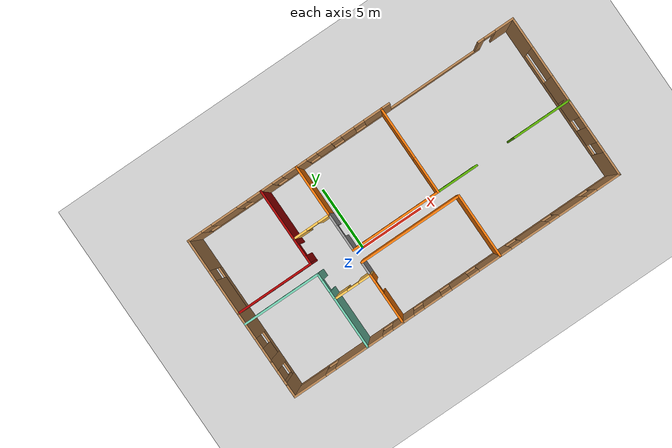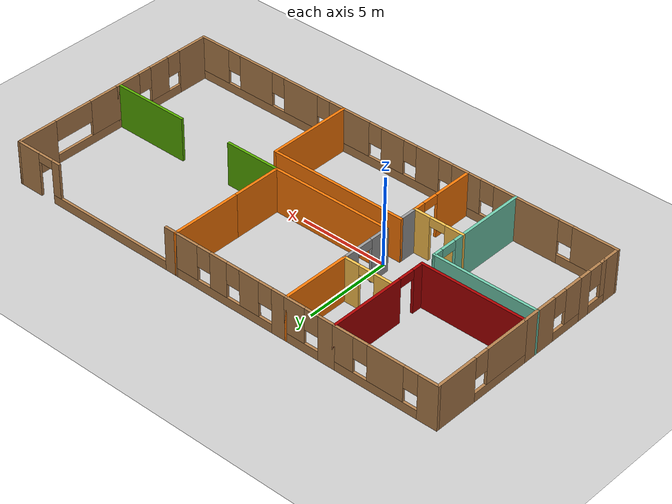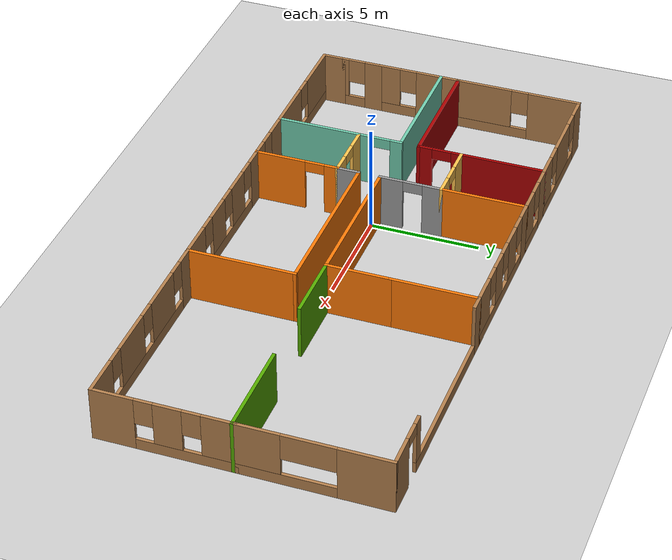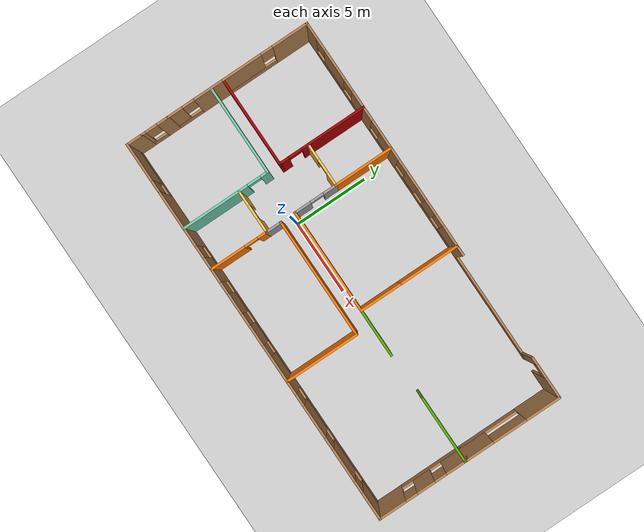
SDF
<sdf version="1.6">
 <world name="default">
  <model name="ground_plane">
   <static>1</static>
   <link name="link">
    <collision name="collision">
     <geometry><plane><normal>0 0 1</normal><size>100 100</size></plane></geometry>
     <surface>
      <contact><collide_bitmask>65535</collide_bitmask></contact>
      <friction><ode><mu>100</mu><mu2>50</mu2></ode></friction>
     </surface>
    </collision>
    <visual name="visual">
     <cast_shadows>0</cast_shadows>
     <geometry><plane><normal>0 0 1</normal><size>100 100</size></plane></geometry>
     <material>
      <script><uri>file://media/materials/scripts/gazebo.material</uri><name>Gazebo/Grey</name></script>
     </material>
    </visual>
   </link>
  </model>
  <model name="home">
   <pose>4.0109 0.7129 0 0 -0 0</pose>
   <link name="Wall_24">
    <pose>-13.075 3.35 0 0 0 -1.5708</pose>
    <visual name="Wall_24_Visual_0">
     <pose>-1.74921 0 1.25 0 -0 0</pose>
     <geometry><box><size>2.50157 0.15 2.5</size></box></geometry>
     <material>
      <script><uri>file://media/materials/scripts/gazebo.material</uri><name>Gazebo/Wood</name></script>
      <ambient>1 1 1 1</ambient>
     </material>
     <meta><layer>0</layer></meta>
    </visual>
    <collision name="Wall_24_Collision_0">
     <geometry><box><size>2.50157 0.15 2.5</size></box></geometry>
     <pose>-1.74921 0 1.25 0 -0 0</pose>
    </collision>
    <visual name="Wall_24_Visual_1">
     <pose>1.25079 0 0.25 0 -0 0</pose>
     <geometry><box><size>3.49843 0.15 0.5</size></box></geometry>
     <material>
      <script><uri>file://media/materials/scripts/gazebo.material</uri><name>Gazebo/Wood</name></script>
      <ambient>1 1 1 1</ambient>
     </material>
     <meta><layer>0</layer></meta>
    </visual>
    <collision name="Wall_24_Collision_1">
     <geometry><box><size>3.49843 0.15 0.5</size></box></geometry>
     <pose>1.25079 0 0.25 0 -0 0</pose>
    </collision>
    <visual name="Wall_24_Visual_2">
     <pose>1.65078 0 1.5 0 -0 0</pose>
     <geometry><box><size>2.69843 0.15 2</size></box></geometry>
     <material>
      <script><uri>file://media/materials/scripts/gazebo.material</uri><name>Gazebo/Wood</name></script>
      <ambient>1 1 1 1</ambient>
     </material>
     <meta><layer>0</layer></meta>
    </visual>
    <collision name="Wall_24_Collision_2">
     <geometry><box><size>2.69843 0.15 2</size></box></geometry>
     <pose>1.65078 0 1.5 0 -0 0</pose>
    </collision>
    <visual name="Wall_24_Visual_3">
     <pose>-0.098431 0 1.9 0 -0 0</pose>
     <geometry><box><size>0.8 0.15 1.2</size></box></geometry>
     <material>
      <script><uri>file://media/materials/scripts/gazebo.material</uri><name>Gazebo/Wood</name></script>
      <ambient>1 1 1 1</ambient>
     </material>
     <meta><layer>0</layer></meta>
    </visual>
    <collision name="Wall_24_Collision_3">
     <geometry><box><size>0.8 0.15 1.2</size></box></geometry>
     <pose>-0.098431 0 1.9 0 -0 0</pose>
    </collision>
   </link>
   <link name="Wall_25">
    <collision name="Wall_25_Collision">
     <geometry><box><size>6 0.15 2.5</size></box></geometry>
     <pose>0 0 1.25 0 -0 0</pose>
    </collision>
    <visual name="Wall_25_Visual">
     <pose>0 0 1.25 0 -0 0</pose>
     <geometry><box><size>6 0.15 2.5</size></box></geometry>
     <material>
      <script><uri>file://media/materials/scripts/gazebo.material</uri><name>Gazebo/Grey</name></script>
      <ambient>0.666667 0 0 1</ambient>
     </material>
     <meta><layer>0</layer></meta>
    </visual>
    <pose>-10.15 0.425 0 0 -0 0</pose>
   </link>
   <link name="Wall_27">
    <pose>-10.15 6.275 0 0 -0 0</pose>
    <visual name="Wall_27_Visual_0">
     <pose>-2.4286 0 1.25 0 -0 0</pose>
     <geometry><box><size>1.1428 0.15 2.5</size></box></geometry>
     <material>
      <script><uri>file://media/materials/scripts/gazebo.material</uri><name>Gazebo/Wood</name></script>
      <ambient>1 1 1 1</ambient>
     </material>
     <meta><layer>0</layer></meta>
    </visual>
    <collision name="Wall_27_Collision_0">
     <geometry><box><size>1.1428 0.15 2.5</size></box></geometry>
     <pose>-2.4286 0 1.25 0 -0 0</pose>
    </collision>
    <visual name="Wall_27_Visual_1">
     <pose>0.571398 0 0.25 0 -0 0</pose>
     <geometry><box><size>4.8572 0.15 0.5</size></box></geometry>
     <material>
      <script><uri>file://media/materials/scripts/gazebo.material</uri><name>Gazebo/Wood</name></script>
      <ambient>1 1 1 1</ambient>
     </material>
     <meta><layer>0</layer></meta>
    </visual>
    <collision name="Wall_27_Collision_1">
     <geometry><box><size>4.8572 0.15 0.5</size></box></geometry>
     <pose>0.571398 0 0.25 0 -0 0</pose>
    </collision>
    <visual name="Wall_27_Visual_2">
     <pose>-0.031204 0 1.5 0 -0 0</pose>
     <geometry><box><size>2.052 0.15 2</size></box></geometry>
     <material>
      <script><uri>file://media/materials/scripts/gazebo.material</uri><name>Gazebo/Wood</name></script>
      <ambient>1 1 1 1</ambient>
     </material>
     <meta><layer>0</layer></meta>
    </visual>
    <collision name="Wall_27_Collision_2">
     <geometry><box><size>2.052 0.15 2</size></box></geometry>
     <pose>-0.031204 0 1.5 0 -0 0</pose>
    </collision>
    <visual name="Wall_27_Visual_3">
     <pose>2.3974 0 1.5 0 -0 0</pose>
     <geometry><box><size>1.2052 0.15 2</size></box></geometry>
     <material>
      <script><uri>file://media/materials/scripts/gazebo.material</uri><name>Gazebo/Wood</name></script>
      <ambient>1 1 1 1</ambient>
     </material>
     <meta><layer>0</layer></meta>
    </visual>
    <collision name="Wall_27_Collision_3">
     <geometry><box><size>1.2052 0.15 2</size></box></geometry>
     <pose>2.3974 0 1.5 0 -0 0</pose>
    </collision>
    <visual name="Wall_27_Visual_4">
     <pose>-1.4572 0 1.9 0 -0 0</pose>
     <geometry><box><size>0.8 0.15 1.2</size></box></geometry>
     <material>
      <script><uri>file://media/materials/scripts/gazebo.material</uri><name>Gazebo/Wood</name></script>
      <ambient>1 1 1 1</ambient>
     </material>
     <meta><layer>0</layer></meta>
    </visual>
    <collision name="Wall_27_Collision_4">
     <geometry><box><size>0.8 0.15 1.2</size></box></geometry>
     <pose>-1.4572 0 1.9 0 -0 0</pose>
    </collision>
    <visual name="Wall_27_Visual_5">
     <pose>1.3948 0 1.9 0 -0 0</pose>
     <geometry><box><size>0.8 0.15 1.2</size></box></geometry>
     <material>
      <script><uri>file://media/materials/scripts/gazebo.material</uri><name>Gazebo/Wood</name></script>
      <ambient>1 1 1 1</ambient>
     </material>
     <meta><layer>0</layer></meta>
    </visual>
    <collision name="Wall_27_Collision_5">
     <geometry><box><size>0.8 0.15 1.2</size></box></geometry>
     <pose>1.3948 0 1.9 0 -0 0</pose>
    </collision>
   </link>
   <link name="Wall_28">
    <pose>-7.225 3.35 0 0 0 -1.5708</pose>
    <visual name="Wall_28_Visual_0">
     <pose>-0.808215 0 1.25 0 -0 0</pose>
     <geometry><box><size>4.38357 0.15 2.5</size></box></geometry>
     <material>
      <script><uri>file://media/materials/scripts/gazebo.material</uri><name>Gazebo/Grey</name></script>
      <ambient>0.666667 0 0 1</ambient>
     </material>
     <meta><layer>0</layer></meta>
    </visual>
    <collision name="Wall_28_Collision_0">
     <geometry><box><size>4.38357 0.15 2.5</size></box></geometry>
     <pose>-0.808215 0 1.25 0 -0 0</pose>
    </collision>
    <visual name="Wall_28_Visual_1">
     <pose>2.64179 0 1.25 0 -0 0</pose>
     <geometry><box><size>0.716431 0.15 2.5</size></box></geometry>
     <material>
      <script><uri>file://media/materials/scripts/gazebo.material</uri><name>Gazebo/Grey</name></script>
      <ambient>0.666667 0 0 1</ambient>
     </material>
     <meta><layer>0</layer></meta>
    </visual>
    <collision name="Wall_28_Collision_1">
     <geometry><box><size>0.716431 0.15 2.5</size></box></geometry>
     <pose>2.64179 0 1.25 0 -0 0</pose>
    </collision>
    <visual name="Wall_28_Visual_2">
     <pose>1.83357 0 2.25 0 -0 0</pose>
     <geometry><box><size>0.9 0.15 0.5</size></box></geometry>
     <material>
      <script><uri>file://media/materials/scripts/gazebo.material</uri><name>Gazebo/Grey</name></script>
      <ambient>0.666667 0 0 1</ambient>
     </material>
     <meta><layer>0</layer></meta>
    </visual>
    <collision name="Wall_28_Collision_2">
     <geometry><box><size>0.9 0.15 0.5</size></box></geometry>
     <pose>1.83357 0 2.25 0 -0 0</pose>
    </collision>
   </link>
   <link name="Wall_32">
    <pose>-13.075 -1.5 0 0 0 -1.5708</pose>
    <visual name="Wall_32_Visual_0">
     <pose>-0.937215 0 1.25 0 -0 0</pose>
     <geometry><box><size>2.12557 0.15 2.5</size></box></geometry>
     <material>
      <script><uri>file://media/materials/scripts/gazebo.material</uri><name>Gazebo/Wood</name></script>
      <ambient>1 1 1 1</ambient>
     </material>
     <meta><layer>0</layer></meta>
    </visual>
    <collision name="Wall_32_Collision_0">
     <geometry><box><size>2.12557 0.15 2.5</size></box></geometry>
     <pose>-0.937215 0 1.25 0 -0 0</pose>
    </collision>
    <visual name="Wall_32_Visual_1">
     <pose>1.06279 0 0.25 0 -0 0</pose>
     <geometry><box><size>1.87443 0.15 0.5</size></box></geometry>
     <material>
      <script><uri>file://media/materials/scripts/gazebo.material</uri><name>Gazebo/Wood</name></script>
      <ambient>1 1 1 1</ambient>
     </material>
     <meta><layer>0</layer></meta>
    </visual>
    <collision name="Wall_32_Collision_1">
     <geometry><box><size>1.87443 0.15 0.5</size></box></geometry>
     <pose>1.06279 0 0.25 0 -0 0</pose>
    </collision>
    <visual name="Wall_32_Visual_2">
     <pose>1.46279 0 1.5 0 -0 0</pose>
     <geometry><box><size>1.07443 0.15 2</size></box></geometry>
     <material>
      <script><uri>file://media/materials/scripts/gazebo.material</uri><name>Gazebo/Wood</name></script>
      <ambient>1 1 1 1</ambient>
     </material>
     <meta><layer>0</layer></meta>
    </visual>
    <collision name="Wall_32_Collision_2">
     <geometry><box><size>1.07443 0.15 2</size></box></geometry>
     <pose>1.46279 0 1.5 0 -0 0</pose>
    </collision>
    <visual name="Wall_32_Visual_3">
     <pose>0.525569 0 1.9 0 -0 0</pose>
     <geometry><box><size>0.8 0.15 1.2</size></box></geometry>
     <material>
      <script><uri>file://media/materials/scripts/gazebo.material</uri><name>Gazebo/Wood</name></script>
      <ambient>1 1 1 1</ambient>
     </material>
     <meta><layer>0</layer></meta>
    </visual>
    <collision name="Wall_32_Collision_3">
     <geometry><box><size>0.8 0.15 1.2</size></box></geometry>
     <pose>0.525569 0 1.9 0 -0 0</pose>
    </collision>
   </link>
   <link name="Wall_34">
    <pose>-13.075 -4.35 0 0 0 -1.5708</pose>
    <visual name="Wall_34_Visual_0">
     <pose>-0.574215 0 1.25 0 -0 0</pose>
     <geometry><box><size>0.85157 0.15 2.5</size></box></geometry>
     <material>
      <script><uri>file://media/materials/scripts/gazebo.material</uri><name>Gazebo/Wood</name></script>
      <ambient>1 1 1 1</ambient>
     </material>
     <meta><layer>0</layer></meta>
    </visual>
    <collision name="Wall_34_Collision_0">
     <geometry><box><size>0.85157 0.15 2.5</size></box></geometry>
     <pose>-0.574215 0 1.25 0 -0 0</pose>
    </collision>
    <visual name="Wall_34_Visual_1">
     <pose>0.425785 0 0.25 0 -0 0</pose>
     <geometry><box><size>1.14843 0.15 0.5</size></box></geometry>
     <material>
      <script><uri>file://media/materials/scripts/gazebo.material</uri><name>Gazebo/Wood</name></script>
      <ambient>1 1 1 1</ambient>
     </material>
     <meta><layer>0</layer></meta>
    </visual>
    <collision name="Wall_34_Collision_1">
     <geometry><box><size>1.14843 0.15 0.5</size></box></geometry>
     <pose>0.425785 0 0.25 0 -0 0</pose>
    </collision>
    <visual name="Wall_34_Visual_2">
     <pose>0.825785 0 1.5 0 -0 0</pose>
     <geometry><box><size>0.34843 0.15 2</size></box></geometry>
     <material>
      <script><uri>file://media/materials/scripts/gazebo.material</uri><name>Gazebo/Wood</name></script>
      <ambient>1 1 1 1</ambient>
     </material>
     <meta><layer>0</layer></meta>
    </visual>
    <collision name="Wall_34_Collision_2">
     <geometry><box><size>0.34843 0.15 2</size></box></geometry>
     <pose>0.825785 0 1.5 0 -0 0</pose>
    </collision>
    <visual name="Wall_34_Visual_3">
     <pose>0.25157 0 1.9 0 -0 0</pose>
     <geometry><box><size>0.8 0.15 1.2</size></box></geometry>
     <material>
      <script><uri>file://media/materials/scripts/gazebo.material</uri><name>Gazebo/Wood</name></script>
      <ambient>1 1 1 1</ambient>
     </material>
     <meta><layer>0</layer></meta>
    </visual>
    <collision name="Wall_34_Collision_3">
     <geometry><box><size>0.8 0.15 1.2</size></box></geometry>
     <pose>0.25157 0 1.9 0 -0 0</pose>
    </collision>
   </link>
   <link name="Wall_36">
    <collision name="Wall_36_Collision">
     <geometry><box><size>1 0.15 2.5</size></box></geometry>
     <pose>0 0 1.25 0 -0 0</pose>
    </collision>
    <visual name="Wall_36_Visual">
     <pose>0 0 1.25 0 -0 0</pose>
     <geometry><box><size>1 0.15 2.5</size></box></geometry>
     <material>
      <script><uri>file://media/materials/scripts/gazebo.material</uri><name>Gazebo/Wood</name></script>
      <ambient>1 1 1 1</ambient>
     </material>
     <meta><layer>0</layer></meta>
    </visual>
    <pose>-13.075 -5.7 0 0 0 -1.5708</pose>
   </link>
   <link name="Wall_39">
    <collision name="Wall_39_Collision">
     <geometry><box><size>6 0.15 2.5</size></box></geometry>
     <pose>0 0 1.25 0 -0 0</pose>
    </collision>
    <visual name="Wall_39_Visual">
     <pose>0 0 1.25 0 -0 0</pose>
     <geometry><box><size>6 0.15 2.5</size></box></geometry>
     <material>
      <script><uri>file://media/materials/scripts/gazebo.material</uri><name>Gazebo/Grey</name></script>
      <ambient>0.435294 0.796078 0.67451 1</ambient>
     </material>
     <meta><layer>0</layer></meta>
    </visual>
    <pose>-10.15 -0.425 0 0 -0 3.14159</pose>
   </link>
   <link name="Wall_43">
    <pose>-7.225 -3.35 0 0 0 -1.5708</pose>
    <visual name="Wall_43_Visual_0">
     <pose>-2.70921 0 1.25 0 -0 0</pose>
     <geometry><box><size>0.581569 0.15 2.5</size></box></geometry>
     <material>
      <script><uri>file://media/materials/scripts/gazebo.material</uri><name>Gazebo/Grey</name></script>
      <ambient>0.435294 0.796078 0.67451 1</ambient>
     </material>
     <meta><layer>0</layer></meta>
    </visual>
    <collision name="Wall_43_Collision_0">
     <geometry><box><size>0.581569 0.15 2.5</size></box></geometry>
     <pose>-2.70921 0 1.25 0 -0 0</pose>
    </collision>
    <visual name="Wall_43_Visual_1">
     <pose>0.740785 0 1.25 0 -0 0</pose>
     <geometry><box><size>4.51843 0.15 2.5</size></box></geometry>
     <material>
      <script><uri>file://media/materials/scripts/gazebo.material</uri><name>Gazebo/Grey</name></script>
      <ambient>0.435294 0.796078 0.67451 1</ambient>
     </material>
     <meta><layer>0</layer></meta>
    </visual>
    <collision name="Wall_43_Collision_1">
     <geometry><box><size>4.51843 0.15 2.5</size></box></geometry>
     <pose>0.740785 0 1.25 0 -0 0</pose>
    </collision>
    <visual name="Wall_43_Visual_2">
     <pose>-1.96843 0 2.25 0 -0 0</pose>
     <geometry><box><size>0.9 0.15 0.5</size></box></geometry>
     <material>
      <script><uri>file://media/materials/scripts/gazebo.material</uri><name>Gazebo/Grey</name></script>
      <ambient>0.435294 0.796078 0.67451 1</ambient>
     </material>
     <meta><layer>0</layer></meta>
    </visual>
    <collision name="Wall_43_Collision_2">
     <geometry><box><size>0.9 0.15 0.5</size></box></geometry>
     <pose>-1.96843 0 2.25 0 -0 0</pose>
    </collision>
   </link>
   <link name="Wall_44">
    <pose>-10.15 -6.275 0 0 -0 3.14159</pose>
    <visual name="Wall_44_Visual_0">
     <pose>-1.6844 0 1.25 0 -0 0</pose>
     <geometry><box><size>2.6312 0.15 2.5</size></box></geometry>
     <material>
      <script><uri>file://media/materials/scripts/gazebo.material</uri><name>Gazebo/Wood</name></script>
      <ambient>1 1 1 1</ambient>
     </material>
     <meta><layer>0</layer></meta>
    </visual>
    <collision name="Wall_44_Collision_0">
     <geometry><box><size>2.6312 0.15 2.5</size></box></geometry>
     <pose>-1.6844 0 1.25 0 -0 0</pose>
    </collision>
    <visual name="Wall_44_Visual_1">
     <pose>1.3156 0 0.25 0 -0 0</pose>
     <geometry><box><size>3.3688 0.15 0.5</size></box></geometry>
     <material>
      <script><uri>file://media/materials/scripts/gazebo.material</uri><name>Gazebo/Wood</name></script>
      <ambient>1 1 1 1</ambient>
     </material>
     <meta><layer>0</layer></meta>
    </visual>
    <collision name="Wall_44_Collision_1">
     <geometry><box><size>3.3688 0.15 0.5</size></box></geometry>
     <pose>1.3156 0 0.25 0 -0 0</pose>
    </collision>
    <visual name="Wall_44_Visual_2">
     <pose>1.7156 0 1.5 0 -0 0</pose>
     <geometry><box><size>2.5688 0.15 2</size></box></geometry>
     <material>
      <script><uri>file://media/materials/scripts/gazebo.material</uri><name>Gazebo/Wood</name></script>
      <ambient>1 1 1 1</ambient>
     </material>
     <meta><layer>0</layer></meta>
    </visual>
    <collision name="Wall_44_Collision_2">
     <geometry><box><size>2.5688 0.15 2</size></box></geometry>
     <pose>1.7156 0 1.5 0 -0 0</pose>
    </collision>
    <visual name="Wall_44_Visual_3">
     <pose>0.031204 0 1.9 0 -0 0</pose>
     <geometry><box><size>0.8 0.15 1.2</size></box></geometry>
     <material>
      <script><uri>file://media/materials/scripts/gazebo.material</uri><name>Gazebo/Wood</name></script>
      <ambient>1 1 1 1</ambient>
     </material>
     <meta><layer>0</layer></meta>
    </visual>
    <collision name="Wall_44_Collision_3">
     <geometry><box><size>0.8 0.15 1.2</size></box></geometry>
     <pose>0.031204 0 1.9 0 -0 0</pose>
    </collision>
   </link>
   <link name="Wall_48">
    <pose>-5.8 6.275 0 0 -0 0</pose>
    <visual name="Wall_48_Visual_0">
     <pose>-1.0016 0 1.25 0 -0 0</pose>
     <geometry><box><size>0.996796 0.15 2.5</size></box></geometry>
     <material>
      <script><uri>file://media/materials/scripts/gazebo.material</uri><name>Gazebo/Wood</name></script>
      <ambient>1 1 1 1</ambient>
     </material>
     <meta><layer>0</layer></meta>
    </visual>
    <collision name="Wall_48_Collision_0">
     <geometry><box><size>0.996796 0.15 2.5</size></box></geometry>
     <pose>-1.0016 0 1.25 0 -0 0</pose>
    </collision>
    <visual name="Wall_48_Visual_1">
     <pose>0.498398 0 0.25 0 -0 0</pose>
     <geometry><box><size>2.0032 0.15 0.5</size></box></geometry>
     <material>
      <script><uri>file://media/materials/scripts/gazebo.material</uri><name>Gazebo/Wood</name></script>
      <ambient>1 1 1 1</ambient>
     </material>
     <meta><layer>0</layer></meta>
    </visual>
    <collision name="Wall_48_Collision_1">
     <geometry><box><size>2.0032 0.15 0.5</size></box></geometry>
     <pose>0.498398 0 0.25 0 -0 0</pose>
    </collision>
    <visual name="Wall_48_Visual_2">
     <pose>0.898398 0 1.5 0 -0 0</pose>
     <geometry><box><size>1.2032 0.15 2</size></box></geometry>
     <material>
      <script><uri>file://media/materials/scripts/gazebo.material</uri><name>Gazebo/Wood</name></script>
      <ambient>1 1 1 1</ambient>
     </material>
     <meta><layer>0</layer></meta>
    </visual>
    <collision name="Wall_48_Collision_2">
     <geometry><box><size>1.2032 0.15 2</size></box></geometry>
     <pose>0.898398 0 1.5 0 -0 0</pose>
    </collision>
    <visual name="Wall_48_Visual_3">
     <pose>-0.103204 0 1.9 0 -0 0</pose>
     <geometry><box><size>0.8 0.15 1.2</size></box></geometry>
     <material>
      <script><uri>file://media/materials/scripts/gazebo.material</uri><name>Gazebo/Wood</name></script>
      <ambient>1 1 1 1</ambient>
     </material>
     <meta><layer>0</layer></meta>
    </visual>
    <collision name="Wall_48_Collision_3">
     <geometry><box><size>0.8 0.15 1.2</size></box></geometry>
     <pose>-0.103204 0 1.9 0 -0 0</pose>
    </collision>
   </link>
   <link name="Wall_49">
    <collision name="Wall_49_Collision">
     <geometry><box><size>4 0.15 2.5</size></box></geometry>
     <pose>0 0 1.25 0 -0 0</pose>
    </collision>
    <visual name="Wall_49_Visual">
     <pose>0 0 1.25 0 -0 0</pose>
     <geometry><box><size>4 0.15 2.5</size></box></geometry>
     <material>
      <script><uri>file://media/materials/scripts/gazebo.material</uri><name>Gazebo/Grey</name></script>
      <ambient>0.996078 0.47451 0.0196078 1</ambient>
     </material>
     <meta><layer>0</layer></meta>
    </visual>
    <pose>-4.375 4.35 0 0 0 -1.5708</pose>
   </link>
   <link name="Wall_50">
    <pose>-5.8 2.425 0 0 -0 3.14159</pose>
    <visual name="Wall_50_Visual_0">
     <pose>-1.0154 0 1.25 0 -0 0</pose>
     <geometry><box><size>0.969204 0.15 2.5</size></box></geometry>
     <material>
      <script><uri>file://media/materials/scripts/gazebo.material</uri><name>Gazebo/Grey</name></script>
      <ambient>1 0.764706 0.305882 1</ambient>
     </material>
     <meta><layer>0</layer></meta>
    </visual>
    <collision name="Wall_50_Collision_0">
     <geometry><box><size>0.969204 0.15 2.5</size></box></geometry>
     <pose>-1.0154 0 1.25 0 -0 0</pose>
    </collision>
    <visual name="Wall_50_Visual_1">
     <pose>0.934602 0 1.25 0 -0 0</pose>
     <geometry><box><size>1.1308 0.15 2.5</size></box></geometry>
     <material>
      <script><uri>file://media/materials/scripts/gazebo.material</uri><name>Gazebo/Grey</name></script>
      <ambient>1 0.764706 0.305882 1</ambient>
     </material>
     <meta><layer>0</layer></meta>
    </visual>
    <collision name="Wall_50_Collision_1">
     <geometry><box><size>1.1308 0.15 2.5</size></box></geometry>
     <pose>0.934602 0 1.25 0 -0 0</pose>
    </collision>
    <visual name="Wall_50_Visual_2">
     <pose>-0.080796 0 2.25 0 -0 0</pose>
     <geometry><box><size>0.9 0.15 0.5</size></box></geometry>
     <material>
      <script><uri>file://media/materials/scripts/gazebo.material</uri><name>Gazebo/Grey</name></script>
      <ambient>1 0.764706 0.305882 1</ambient>
     </material>
     <meta><layer>0</layer></meta>
    </visual>
    <collision name="Wall_50_Collision_2">
     <geometry><box><size>0.9 0.15 0.5</size></box></geometry>
     <pose>-0.080796 0 2.25 0 -0 0</pose>
    </collision>
   </link>
   <link name="Wall_53">
    <pose>-0.95 6.275 0 0 -0 0</pose>
    <visual name="Wall_53_Visual_0">
     <pose>-3.0466 0 1.25 0 -0 0</pose>
     <geometry><box><size>0.906796 0.15 2.5</size></box></geometry>
     <material>
      <script><uri>file://media/materials/scripts/gazebo.material</uri><name>Gazebo/Wood</name></script>
      <ambient>1 1 1 1</ambient>
     </material>
     <meta><layer>0</layer></meta>
    </visual>
    <collision name="Wall_53_Collision_0">
     <geometry><box><size>0.906796 0.15 2.5</size></box></geometry>
     <pose>-3.0466 0 1.25 0 -0 0</pose>
    </collision>
    <visual name="Wall_53_Visual_1">
     <pose>0.453398 0 0.25 0 -0 0</pose>
     <geometry><box><size>6.0932 0.15 0.5</size></box></geometry>
     <material>
      <script><uri>file://media/materials/scripts/gazebo.material</uri><name>Gazebo/Wood</name></script>
      <ambient>1 1 1 1</ambient>
     </material>
     <meta><layer>0</layer></meta>
    </visual>
    <collision name="Wall_53_Collision_1">
     <geometry><box><size>6.0932 0.15 0.5</size></box></geometry>
     <pose>0.453398 0 0.25 0 -0 0</pose>
    </collision>
    <visual name="Wall_53_Visual_2">
     <pose>-1.2042 0 1.5 0 -0 0</pose>
     <geometry><box><size>1.178 0.15 2</size></box></geometry>
     <material>
      <script><uri>file://media/materials/scripts/gazebo.material</uri><name>Gazebo/Wood</name></script>
      <ambient>1 1 1 1</ambient>
     </material>
     <meta><layer>0</layer></meta>
    </visual>
    <collision name="Wall_53_Collision_2">
     <geometry><box><size>1.178 0.15 2</size></box></geometry>
     <pose>-1.2042 0 1.5 0 -0 0</pose>
    </collision>
    <visual name="Wall_53_Visual_3">
     <pose>0.704796 0 1.5 0 -0 0</pose>
     <geometry><box><size>1.04 0.15 2</size></box></geometry>
     <material>
      <script><uri>file://media/materials/scripts/gazebo.material</uri><name>Gazebo/Wood</name></script>
      <ambient>1 1 1 1</ambient>
     </material>
     <meta><layer>0</layer></meta>
    </visual>
    <collision name="Wall_53_Collision_3">
     <geometry><box><size>1.04 0.15 2</size></box></geometry>
     <pose>0.704796 0 1.5 0 -0 0</pose>
    </collision>
    <visual name="Wall_53_Visual_4">
     <pose>2.7624 0 1.5 0 -0 0</pose>
     <geometry><box><size>1.4752 0.15 2</size></box></geometry>
     <material>
      <script><uri>file://media/materials/scripts/gazebo.material</uri><name>Gazebo/Wood</name></script>
      <ambient>1 1 1 1</ambient>
     </material>
     <meta><layer>0</layer></meta>
    </visual>
    <collision name="Wall_53_Collision_4">
     <geometry><box><size>1.4752 0.15 2</size></box></geometry>
     <pose>2.7624 0 1.5 0 -0 0</pose>
    </collision>
    <visual name="Wall_53_Visual_5">
     <pose>-2.1932 0 1.9 0 -0 0</pose>
     <geometry><box><size>0.8 0.15 1.2</size></box></geometry>
     <material>
      <script><uri>file://media/materials/scripts/gazebo.material</uri><name>Gazebo/Wood</name></script>
      <ambient>1 1 1 1</ambient>
     </material>
     <meta><layer>0</layer></meta>
    </visual>
    <collision name="Wall_53_Collision_5">
     <geometry><box><size>0.8 0.15 1.2</size></box></geometry>
     <pose>-2.1932 0 1.9 0 -0 0</pose>
    </collision>
    <visual name="Wall_53_Visual_6">
     <pose>-0.215204 0 1.9 0 -0 0</pose>
     <geometry><box><size>0.8 0.15 1.2</size></box></geometry>
     <material>
      <script><uri>file://media/materials/scripts/gazebo.material</uri><name>Gazebo/Wood</name></script>
      <ambient>1 1 1 1</ambient>
     </material>
     <meta><layer>0</layer></meta>
    </visual>
    <collision name="Wall_53_Collision_6">
     <geometry><box><size>0.8 0.15 1.2</size></box></geometry>
     <pose>-0.215204 0 1.9 0 -0 0</pose>
    </collision>
    <visual name="Wall_53_Visual_7">
     <pose>1.6248 0 1.9 0 -0 0</pose>
     <geometry><box><size>0.8 0.15 1.2</size></box></geometry>
     <material>
      <script><uri>file://media/materials/scripts/gazebo.material</uri><name>Gazebo/Wood</name></script>
      <ambient>1 1 1 1</ambient>
     </material>
     <meta><layer>0</layer></meta>
    </visual>
    <collision name="Wall_53_Collision_7">
     <geometry><box><size>0.8 0.15 1.2</size></box></geometry>
     <pose>1.6248 0 1.9 0 -0 0</pose>
    </collision>
   </link>
   <link name="Wall_54">
    <collision name="Wall_54_Collision">
     <geometry><box><size>4 0.15 2.5</size></box></geometry>
     <pose>0 0 1.25 0 -0 0</pose>
    </collision>
    <visual name="Wall_54_Visual">
     <pose>0 0 1.25 0 -0 0</pose>
     <geometry><box><size>4 0.15 2.5</size></box></geometry>
     <material>
      <script><uri>file://media/materials/scripts/gazebo.material</uri><name>Gazebo/Grey</name></script>
      <ambient>0.996078 0.47451 0.0196078 1</ambient>
     </material>
     <meta><layer>0</layer></meta>
    </visual>
    <pose>2.475 4.35 0 0 0 -1.5708</pose>
   </link>
   <link name="Wall_56">
    <collision name="Wall_56_Collision">
     <geometry><box><size>3 0.15 2.5</size></box></geometry>
     <pose>0 0 1.25 0 -0 0</pose>
    </collision>
    <visual name="Wall_56_Visual">
     <pose>0 0 1.25 0 -0 0</pose>
     <geometry><box><size>3 0.15 2.5</size></box></geometry>
     <material>
      <script><uri>file://media/materials/scripts/gazebo.material</uri><name>Gazebo/Grey</name></script>
      <ambient>0.996078 0.47451 0.0196078 1</ambient>
     </material>
     <meta><layer>0</layer></meta>
    </visual>
    <pose>2.475 1 0 0 0 -1.5708</pose>
   </link>
   <link name="Wall_58">
    <pose>-4.375 1 0 0 0 -1.5708</pose>
    <visual name="Wall_58_Visual_0">
     <pose>-1.02622 0 1.25 0 -0 0</pose>
     <geometry><box><size>0.947569 0.15 2.5</size></box></geometry>
     <material>
      <script><uri>file://media/materials/scripts/gazebo.material</uri><name>Gazebo/Grey</name></script>
      <ambient>1 1 1 1</ambient>
     </material>
     <meta><layer>0</layer></meta>
    </visual>
    <collision name="Wall_58_Collision_0">
     <geometry><box><size>0.947569 0.15 2.5</size></box></geometry>
     <pose>-1.02622 0 1.25 0 -0 0</pose>
    </collision>
    <visual name="Wall_58_Visual_1">
     <pose>0.923785 0 1.25 0 -0 0</pose>
     <geometry><box><size>1.15243 0.15 2.5</size></box></geometry>
     <material>
      <script><uri>file://media/materials/scripts/gazebo.material</uri><name>Gazebo/Grey</name></script>
      <ambient>1 1 1 1</ambient>
     </material>
     <meta><layer>0</layer></meta>
    </visual>
    <collision name="Wall_58_Collision_1">
     <geometry><box><size>1.15243 0.15 2.5</size></box></geometry>
     <pose>0.923785 0 1.25 0 -0 0</pose>
    </collision>
    <visual name="Wall_58_Visual_2">
     <pose>-0.102431 0 2.25 0 -0 0</pose>
     <geometry><box><size>0.9 0.15 0.5</size></box></geometry>
     <material>
      <script><uri>file://media/materials/scripts/gazebo.material</uri><name>Gazebo/Grey</name></script>
      <ambient>1 1 1 1</ambient>
     </material>
     <meta><layer>0</layer></meta>
    </visual>
    <collision name="Wall_58_Collision_2">
     <geometry><box><size>0.9 0.15 0.5</size></box></geometry>
     <pose>-0.102431 0 2.25 0 -0 0</pose>
    </collision>
   </link>
   <link name="Wall_59">
    <collision name="Wall_59_Collision">
     <geometry><box><size>7 0.15 2.5</size></box></geometry>
     <pose>0 0 1.25 0 -0 0</pose>
    </collision>
    <visual name="Wall_59_Visual">
     <pose>0 0 1.25 0 -0 0</pose>
     <geometry><box><size>7 0.15 2.5</size></box></geometry>
     <material>
      <script><uri>file://media/materials/scripts/gazebo.material</uri><name>Gazebo/Grey</name></script>
      <ambient>0.996078 0.47451 0.0196078 1</ambient>
     </material>
     <meta><layer>0</layer></meta>
    </visual>
    <pose>-0.95 -0.425 0 0 -0 0</pose>
   </link>
   <link name="Wall_62">
    <pose>-5.8 -6.275 0 0 -0 0</pose>
    <visual name="Wall_62_Visual_0">
     <pose>-0.840602 0 1.25 0 -0 0</pose>
     <geometry><box><size>1.3188 0.15 2.5</size></box></geometry>
     <material>
      <script><uri>file://media/materials/scripts/gazebo.material</uri><name>Gazebo/Wood</name></script>
      <ambient>1 1 1 1</ambient>
     </material>
     <meta><layer>0</layer></meta>
    </visual>
    <collision name="Wall_62_Collision_0">
     <geometry><box><size>1.3188 0.15 2.5</size></box></geometry>
     <pose>-0.840602 0 1.25 0 -0 0</pose>
    </collision>
    <visual name="Wall_62_Visual_1">
     <pose>0.659398 0 0.25 0 -0 0</pose>
     <geometry><box><size>1.6812 0.15 0.5</size></box></geometry>
     <material>
      <script><uri>file://media/materials/scripts/gazebo.material</uri><name>Gazebo/Wood</name></script>
      <ambient>1 1 1 1</ambient>
     </material>
     <meta><layer>0</layer></meta>
    </visual>
    <collision name="Wall_62_Collision_1">
     <geometry><box><size>1.6812 0.15 0.5</size></box></geometry>
     <pose>0.659398 0 0.25 0 -0 0</pose>
    </collision>
    <visual name="Wall_62_Visual_2">
     <pose>1.0594 0 1.5 0 -0 0</pose>
     <geometry><box><size>0.881204 0.15 2</size></box></geometry>
     <material>
      <script><uri>file://media/materials/scripts/gazebo.material</uri><name>Gazebo/Wood</name></script>
      <ambient>1 1 1 1</ambient>
     </material>
     <meta><layer>0</layer></meta>
    </visual>
    <collision name="Wall_62_Collision_2">
     <geometry><box><size>0.881204 0.15 2</size></box></geometry>
     <pose>1.0594 0 1.5 0 -0 0</pose>
    </collision>
    <visual name="Wall_62_Visual_3">
     <pose>0.218796 0 1.9 0 -0 0</pose>
     <geometry><box><size>0.8 0.15 1.2</size></box></geometry>
     <material>
      <script><uri>file://media/materials/scripts/gazebo.material</uri><name>Gazebo/Wood</name></script>
      <ambient>1 1 1 1</ambient>
     </material>
     <meta><layer>0</layer></meta>
    </visual>
    <collision name="Wall_62_Collision_3">
     <geometry><box><size>0.8 0.15 1.2</size></box></geometry>
     <pose>0.218796 0 1.9 0 -0 0</pose>
    </collision>
   </link>
   <link name="Wall_63">
    <pose>-4.375 -4.35 0 0 -0 1.5708</pose>
    <visual name="Wall_63_Visual_0">
     <pose>-0.798785 0 1.25 0 -0 0</pose>
     <geometry><box><size>2.40243 0.15 2.5</size></box></geometry>
     <material>
      <script><uri>file://media/materials/scripts/gazebo.material</uri><name>Gazebo/Grey</name></script>
      <ambient>0.996078 0.47451 0.0196078 1</ambient>
     </material>
     <meta><layer>0</layer></meta>
    </visual>
    <collision name="Wall_63_Collision_0">
     <geometry><box><size>2.40243 0.15 2.5</size></box></geometry>
     <pose>-0.798785 0 1.25 0 -0 0</pose>
    </collision>
    <visual name="Wall_63_Visual_1">
     <pose>1.65122 0 1.25 0 -0 0</pose>
     <geometry><box><size>0.697569 0.15 2.5</size></box></geometry>
     <material>
      <script><uri>file://media/materials/scripts/gazebo.material</uri><name>Gazebo/Grey</name></script>
      <ambient>0.996078 0.47451 0.0196078 1</ambient>
     </material>
     <meta><layer>0</layer></meta>
    </visual>
    <collision name="Wall_63_Collision_1">
     <geometry><box><size>0.697569 0.15 2.5</size></box></geometry>
     <pose>1.65122 0 1.25 0 -0 0</pose>
    </collision>
    <visual name="Wall_63_Visual_2">
     <pose>0.852431 0 2.25 0 -0 0</pose>
     <geometry><box><size>0.9 0.15 0.5</size></box></geometry>
     <material>
      <script><uri>file://media/materials/scripts/gazebo.material</uri><name>Gazebo/Grey</name></script>
      <ambient>0.996078 0.47451 0.0196078 1</ambient>
     </material>
     <meta><layer>0</layer></meta>
    </visual>
    <collision name="Wall_63_Collision_2">
     <geometry><box><size>0.9 0.15 0.5</size></box></geometry>
     <pose>0.852431 0 2.25 0 -0 0</pose>
    </collision>
   </link>
   <link name="Wall_64">
    <pose>-5.8 -2.425 0 0 -0 3.14159</pose>
    <visual name="Wall_64_Visual_0">
     <pose>-0.992398 0 1.25 0 -0 0</pose>
     <geometry><box><size>1.0152 0.15 2.5</size></box></geometry>
     <material>
      <script><uri>file://media/materials/scripts/gazebo.material</uri><name>Gazebo/Grey</name></script>
      <ambient>1 0.764706 0.305882 1</ambient>
     </material>
     <meta><layer>0</layer></meta>
    </visual>
    <collision name="Wall_64_Collision_0">
     <geometry><box><size>1.0152 0.15 2.5</size></box></geometry>
     <pose>-0.992398 0 1.25 0 -0 0</pose>
    </collision>
    <visual name="Wall_64_Visual_1">
     <pose>0.957602 0 1.25 0 -0 0</pose>
     <geometry><box><size>1.0848 0.15 2.5</size></box></geometry>
     <material>
      <script><uri>file://media/materials/scripts/gazebo.material</uri><name>Gazebo/Grey</name></script>
      <ambient>1 0.764706 0.305882 1</ambient>
     </material>
     <meta><layer>0</layer></meta>
    </visual>
    <collision name="Wall_64_Collision_1">
     <geometry><box><size>1.0848 0.15 2.5</size></box></geometry>
     <pose>0.957602 0 1.25 0 -0 0</pose>
    </collision>
    <visual name="Wall_64_Visual_2">
     <pose>-0.034796 0 2.25 0 -0 0</pose>
     <geometry><box><size>0.9 0.15 0.5</size></box></geometry>
     <material>
      <script><uri>file://media/materials/scripts/gazebo.material</uri><name>Gazebo/Grey</name></script>
      <ambient>1 0.764706 0.305882 1</ambient>
     </material>
     <meta><layer>0</layer></meta>
    </visual>
    <collision name="Wall_64_Collision_2">
     <geometry><box><size>0.9 0.15 0.5</size></box></geometry>
     <pose>-0.034796 0 2.25 0 -0 0</pose>
    </collision>
   </link>
   <link name="Wall_68">
    <pose>-0.45 -6.275 0 0 -0 0</pose>
    <visual name="Wall_68_Visual_0">
     <pose>-3.5006 0 1.25 0 -0 0</pose>
     <geometry><box><size>0.998796 0.15 2.5</size></box></geometry>
     <material>
      <script><uri>file://media/materials/scripts/gazebo.material</uri><name>Gazebo/Wood</name></script>
      <ambient>1 1 1 1</ambient>
     </material>
     <meta><layer>0</layer></meta>
    </visual>
    <collision name="Wall_68_Collision_0">
     <geometry><box><size>0.998796 0.15 2.5</size></box></geometry>
     <pose>-3.5006 0 1.25 0 -0 0</pose>
    </collision>
    <visual name="Wall_68_Visual_1">
     <pose>0.499398 0 0.25 0 -0 0</pose>
     <geometry><box><size>7.0012 0.15 0.5</size></box></geometry>
     <material>
      <script><uri>file://media/materials/scripts/gazebo.material</uri><name>Gazebo/Wood</name></script>
      <ambient>1 1 1 1</ambient>
     </material>
     <meta><layer>0</layer></meta>
    </visual>
    <collision name="Wall_68_Collision_1">
     <geometry><box><size>7.0012 0.15 0.5</size></box></geometry>
     <pose>0.499398 0 0.25 0 -0 0</pose>
    </collision>
    <visual name="Wall_68_Visual_2">
     <pose>-1.4972 0 1.5 0 -0 0</pose>
     <geometry><box><size>1.408 0.15 2</size></box></geometry>
     <material>
      <script><uri>file://media/materials/scripts/gazebo.material</uri><name>Gazebo/Wood</name></script>
      <ambient>1 1 1 1</ambient>
     </material>
     <meta><layer>0</layer></meta>
    </visual>
    <collision name="Wall_68_Collision_2">
     <geometry><box><size>1.408 0.15 2</size></box></geometry>
     <pose>-1.4972 0 1.5 0 -0 0</pose>
    </collision>
    <visual name="Wall_68_Visual_3">
     <pose>0.710796 0 1.5 0 -0 0</pose>
     <geometry><box><size>1.408 0.15 2</size></box></geometry>
     <material>
      <script><uri>file://media/materials/scripts/gazebo.material</uri><name>Gazebo/Wood</name></script>
      <ambient>1 1 1 1</ambient>
     </material>
     <meta><layer>0</layer></meta>
    </visual>
    <collision name="Wall_68_Collision_3">
     <geometry><box><size>1.408 0.15 2</size></box></geometry>
     <pose>0.710796 0 1.5 0 -0 0</pose>
    </collision>
    <visual name="Wall_68_Visual_4">
     <pose>3.1074 0 1.5 0 -0 0</pose>
     <geometry><box><size>1.7852 0.15 2</size></box></geometry>
     <material>
      <script><uri>file://media/materials/scripts/gazebo.material</uri><name>Gazebo/Wood</name></script>
      <ambient>1 1 1 1</ambient>
     </material>
     <meta><layer>0</layer></meta>
    </visual>
    <collision name="Wall_68_Collision_4">
     <geometry><box><size>1.7852 0.15 2</size></box></geometry>
     <pose>3.1074 0 1.5 0 -0 0</pose>
    </collision>
    <visual name="Wall_68_Visual_5">
     <pose>-2.6012 0 1.9 0 -0 0</pose>
     <geometry><box><size>0.8 0.15 1.2</size></box></geometry>
     <material>
      <script><uri>file://media/materials/scripts/gazebo.material</uri><name>Gazebo/Wood</name></script>
      <ambient>1 1 1 1</ambient>
     </material>
     <meta><layer>0</layer></meta>
    </visual>
    <collision name="Wall_68_Collision_5">
     <geometry><box><size>0.8 0.15 1.2</size></box></geometry>
     <pose>-2.6012 0 1.9 0 -0 0</pose>
    </collision>
    <visual name="Wall_68_Visual_6">
     <pose>-0.393204 0 1.9 0 -0 0</pose>
     <geometry><box><size>0.8 0.15 1.2</size></box></geometry>
     <material>
      <script><uri>file://media/materials/scripts/gazebo.material</uri><name>Gazebo/Wood</name></script>
      <ambient>1 1 1 1</ambient>
     </material>
     <meta><layer>0</layer></meta>
    </visual>
    <collision name="Wall_68_Collision_6">
     <geometry><box><size>0.8 0.15 1.2</size></box></geometry>
     <pose>-0.393204 0 1.9 0 -0 0</pose>
    </collision>
    <visual name="Wall_68_Visual_7">
     <pose>1.8148 0 1.9 0 -0 0</pose>
     <geometry><box><size>0.8 0.15 1.2</size></box></geometry>
     <material>
      <script><uri>file://media/materials/scripts/gazebo.material</uri><name>Gazebo/Wood</name></script>
      <ambient>1 1 1 1</ambient>
     </material>
     <meta><layer>0</layer></meta>
    </visual>
    <collision name="Wall_68_Collision_7">
     <geometry><box><size>0.8 0.15 1.2</size></box></geometry>
     <pose>1.8148 0 1.9 0 -0 0</pose>
    </collision>
   </link>
   <link name="Wall_69">
    <collision name="Wall_69_Collision">
     <geometry><box><size>5 0.15 2.5</size></box></geometry>
     <pose>0 0 1.25 0 -0 0</pose>
    </collision>
    <visual name="Wall_69_Visual">
     <pose>0 0 1.25 0 -0 0</pose>
     <geometry><box><size>5 0.15 2.5</size></box></geometry>
     <material>
      <script><uri>file://media/materials/scripts/gazebo.material</uri><name>Gazebo/Grey</name></script>
      <ambient>0.996078 0.47451 0.0196078 1</ambient>
     </material>
     <meta><layer>0</layer></meta>
    </visual>
    <pose>3.475 -3.85 0 0 -0 1.5708</pose>
   </link>
   <link name="Wall_70">
    <collision name="Wall_70_Collision">
     <geometry><box><size>8 0.15 2.5</size></box></geometry>
     <pose>0 0 1.25 0 -0 0</pose>
    </collision>
    <visual name="Wall_70_Visual">
     <pose>0 0 1.25 0 -0 0</pose>
     <geometry><box><size>8 0.15 2.5</size></box></geometry>
     <material>
      <script><uri>file://media/materials/scripts/gazebo.material</uri><name>Gazebo/Grey</name></script>
      <ambient>0.996078 0.47451 0.0196078 1</ambient>
     </material>
     <meta><layer>0</layer></meta>
    </visual>
    <pose>-0.45 -1.425 0 0 -0 3.14159</pose>
   </link>
   <link name="Wall_71">
    <collision name="Wall_71_Collision">
     <geometry><box><size>1.15 0.15 2.5</size></box></geometry>
     <pose>0 0 1.25 0 -0 0</pose>
    </collision>
    <visual name="Wall_71_Visual">
     <pose>0 0 1.25 0 -0 0</pose>
     <geometry><box><size>1.15 0.15 2.5</size></box></geometry>
     <material>
      <script><uri>file://media/materials/scripts/gazebo.material</uri><name>Gazebo/Grey</name></script>
      <ambient>1 1 1 1</ambient>
     </material>
     <meta><layer>0</layer></meta>
    </visual>
    <pose>-4.375 -1.925 0 0 0 -1.5708</pose>
   </link>
   <link name="Wall_74">
    <collision name="Wall_74_Collision">
     <geometry><box><size>3.25 0.15 2.5</size></box></geometry>
     <pose>0 0 1.25 0 -0 0</pose>
    </collision>
    <visual name="Wall_74_Visual">
     <pose>0 0 1.25 0 -0 0</pose>
     <geometry><box><size>3.25 0.15 2.5</size></box></geometry>
     <material>
      <script><uri>file://media/materials/scripts/gazebo.material</uri><name>Gazebo/Grey</name></script>
      <ambient>0.333333 0.666667 0 1</ambient>
     </material>
     <meta><layer>0</layer></meta>
    </visual>
    <pose>4.025 -0.425 0 0 -0 0</pose>
   </link>
   <link name="Wall_76">
    <pose>7.775 6.275 0 0 -0 0</pose>
    <visual name="Wall_76_Visual_0">
     <pose>-4.99493 0 1.25 0 -0 0</pose>
     <geometry><box><size>0.760131 0.15 2.5</size></box></geometry>
     <material>
      <script><uri>file://media/materials/scripts/gazebo.material</uri><name>Gazebo/Wood</name></script>
      <ambient>1 1 1 1</ambient>
     </material>
     <meta><layer>0</layer></meta>
    </visual>
    <collision name="Wall_76_Collision_0">
     <geometry><box><size>0.760131 0.15 2.5</size></box></geometry>
     <pose>-4.99493 0 1.25 0 -0 0</pose>
    </collision>
    <visual name="Wall_76_Visual_1">
     <pose>4.6294 0 1.25 0 -0 0</pose>
     <geometry><box><size>1.4912 0.15 2.5</size></box></geometry>
     <material>
      <script><uri>file://media/materials/scripts/gazebo.material</uri><name>Gazebo/Wood</name></script>
      <ambient>1 1 1 1</ambient>
     </material>
     <meta><layer>0</layer></meta>
    </visual>
    <collision name="Wall_76_Collision_1">
     <geometry><box><size>1.4912 0.15 2.5</size></box></geometry>
     <pose>4.6294 0 1.25 0 -0 0</pose>
    </collision>
    <visual name="Wall_76_Visual_2">
     <pose>-0.815537 0 0.25 0 -0 0</pose>
     <geometry><box><size>7.59866 0.15 0.5</size></box></geometry>
     <material>
      <script><uri>file://media/materials/scripts/gazebo.material</uri><name>Gazebo/Wood</name></script>
      <ambient>1 1 1 1</ambient>
     </material>
     <meta><layer>0</layer></meta>
    </visual>
    <collision name="Wall_76_Collision_2">
     <geometry><box><size>7.59866 0.15 0.5</size></box></geometry>
     <pose>-0.815537 0 0.25 0 -0 0</pose>
    </collision>
    <visual name="Wall_76_Visual_3">
     <pose>2.72996 0 1.5 0 -0 0</pose>
     <geometry><box><size>0.507665 0.15 2</size></box></geometry>
     <material>
      <script><uri>file://media/materials/scripts/gazebo.material</uri><name>Gazebo/Wood</name></script>
      <ambient>1 1 1 1</ambient>
     </material>
     <meta><layer>0</layer></meta>
    </visual>
    <collision name="Wall_76_Collision_3">
     <geometry><box><size>0.507665 0.15 2</size></box></geometry>
     <pose>2.72996 0 1.5 0 -0 0</pose>
    </collision>
    <visual name="Wall_76_Visual_4">
     <pose>3.4338 0 2.25 0 -0 0</pose>
     <geometry><box><size>0.9 0.15 0.5</size></box></geometry>
     <material>
      <script><uri>file://media/materials/scripts/gazebo.material</uri><name>Gazebo/Wood</name></script>
      <ambient>1 1 1 1</ambient>
     </material>
     <meta><layer>0</layer></meta>
    </visual>
    <collision name="Wall_76_Collision_4">
     <geometry><box><size>0.9 0.15 0.5</size></box></geometry>
     <pose>3.4338 0 2.25 0 -0 0</pose>
    </collision>
   </link>
   <link name="Wall_79">
    <pose>13.075 2.975 0 0 0 -1.5708</pose>
    <visual name="Wall_79_Visual_0">
     <pose>-2.18251 0 1.25 0 -0 0</pose>
     <geometry><box><size>2.38498 0.15 2.5</size></box></geometry>
     <material>
      <script><uri>file://media/materials/scripts/gazebo.material</uri><name>Gazebo/Wood</name></script>
      <ambient>1 1 1 1</ambient>
     </material>
     <meta><layer>0</layer></meta>
    </visual>
    <collision name="Wall_79_Collision_0">
     <geometry><box><size>2.38498 0.15 2.5</size></box></geometry>
     <pose>-2.18251 0 1.25 0 -0 0</pose>
    </collision>
    <visual name="Wall_79_Visual_1">
     <pose>1.19249 0 0.25 0 -0 0</pose>
     <geometry><box><size>4.36502 0.15 0.5</size></box></geometry>
     <material>
      <script><uri>file://media/materials/scripts/gazebo.material</uri><name>Gazebo/Wood</name></script>
      <ambient>1 1 1 1</ambient>
     </material>
     <meta><layer>0</layer></meta>
    </visual>
    <collision name="Wall_79_Collision_1">
     <geometry><box><size>4.36502 0.15 0.5</size></box></geometry>
     <pose>1.19249 0 0.25 0 -0 0</pose>
    </collision>
    <visual name="Wall_79_Visual_2">
     <pose>2.34864 0 1.5 0 -0 0</pose>
     <geometry><box><size>2.05273 0.15 2</size></box></geometry>
     <material>
      <script><uri>file://media/materials/scripts/gazebo.material</uri><name>Gazebo/Wood</name></script>
      <ambient>1 1 1 1</ambient>
     </material>
     <meta><layer>0</layer></meta>
    </visual>
    <collision name="Wall_79_Collision_2">
     <geometry><box><size>2.05273 0.15 2</size></box></geometry>
     <pose>2.34864 0 1.5 0 -0 0</pose>
    </collision>
    <visual name="Wall_79_Visual_3">
     <pose>0.166128 0 1.9 0 -0 0</pose>
     <geometry><box><size>2.31229 0.15 1.2</size></box></geometry>
     <material>
      <script><uri>file://media/materials/scripts/gazebo.material</uri><name>Gazebo/Wood</name></script>
      <ambient>1 1 1 1</ambient>
     </material>
     <meta><layer>0</layer></meta>
    </visual>
    <collision name="Wall_79_Collision_3">
     <geometry><box><size>2.31229 0.15 1.2</size></box></geometry>
     <pose>0.166128 0 1.9 0 -0 0</pose>
    </collision>
   </link>
   <link name="Wall_80">
    <collision name="Wall_80_Collision">
     <geometry><box><size>4.5 0.15 2.5</size></box></geometry>
     <pose>0 0 1.25 0 -0 0</pose>
    </collision>
    <visual name="Wall_80_Visual">
     <pose>0 0 1.25 0 -0 0</pose>
     <geometry><box><size>4.5 0.15 2.5</size></box></geometry>
     <material>
      <script><uri>file://media/materials/scripts/gazebo.material</uri><name>Gazebo/Grey</name></script>
      <ambient>0.333333 0.666667 0 1</ambient>
     </material>
     <meta><layer>0</layer></meta>
    </visual>
    <pose>10.9 -0.325 0 0 -0 3.14159</pose>
   </link>
   <link name="Wall_82">
    <pose>8.275 -6.275 0 0 -0 0</pose>
    <visual name="Wall_82_Visual_0">
     <pose>-4.3906 0 1.25 0 -0 0</pose>
     <geometry><box><size>0.968796 0.15 2.5</size></box></geometry>
     <material>
      <script><uri>file://media/materials/scripts/gazebo.material</uri><name>Gazebo/Wood</name></script>
      <ambient>1 1 1 1</ambient>
     </material>
     <meta><layer>0</layer></meta>
    </visual>
    <collision name="Wall_82_Collision_0">
     <geometry><box><size>0.968796 0.15 2.5</size></box></geometry>
     <pose>-4.3906 0 1.25 0 -0 0</pose>
    </collision>
    <visual name="Wall_82_Visual_1">
     <pose>0.484398 0 0.25 0 -0 0</pose>
     <geometry><box><size>8.7812 0.15 0.5</size></box></geometry>
     <material>
      <script><uri>file://media/materials/scripts/gazebo.material</uri><name>Gazebo/Wood</name></script>
      <ambient>1 1 1 1</ambient>
     </material>
     <meta><layer>0</layer></meta>
    </visual>
    <collision name="Wall_82_Collision_1">
     <geometry><box><size>8.7812 0.15 0.5</size></box></geometry>
     <pose>0.484398 0 0.25 0 -0 0</pose>
    </collision>
    <visual name="Wall_82_Visual_2">
     <pose>-1.9882 0 1.5 0 -0 0</pose>
     <geometry><box><size>2.236 0.15 2</size></box></geometry>
     <material>
      <script><uri>file://media/materials/scripts/gazebo.material</uri><name>Gazebo/Wood</name></script>
      <ambient>1 1 1 1</ambient>
     </material>
     <meta><layer>0</layer></meta>
    </visual>
    <collision name="Wall_82_Collision_2">
     <geometry><box><size>2.236 0.15 2</size></box></geometry>
     <pose>-1.9882 0 1.5 0 -0 0</pose>
    </collision>
    <visual name="Wall_82_Visual_3">
     <pose>1.0478 0 1.5 0 -0 0</pose>
     <geometry><box><size>2.236 0.15 2</size></box></geometry>
     <material>
      <script><uri>file://media/materials/scripts/gazebo.material</uri><name>Gazebo/Wood</name></script>
      <ambient>1 1 1 1</ambient>
     </material>
     <meta><layer>0</layer></meta>
    </visual>
    <collision name="Wall_82_Collision_3">
     <geometry><box><size>2.236 0.15 2</size></box></geometry>
     <pose>1.0478 0 1.5 0 -0 0</pose>
    </collision>
    <visual name="Wall_82_Visual_4">
     <pose>3.9204 0 1.5 0 -0 0</pose>
     <geometry><box><size>1.9092 0.15 2</size></box></geometry>
     <material>
      <script><uri>file://media/materials/scripts/gazebo.material</uri><name>Gazebo/Wood</name></script>
      <ambient>1 1 1 1</ambient>
     </material>
     <meta><layer>0</layer></meta>
    </visual>
    <collision name="Wall_82_Collision_4">
     <geometry><box><size>1.9092 0.15 2</size></box></geometry>
     <pose>3.9204 0 1.5 0 -0 0</pose>
    </collision>
    <visual name="Wall_82_Visual_5">
     <pose>-3.5062 0 1.9 0 -0 0</pose>
     <geometry><box><size>0.8 0.15 1.2</size></box></geometry>
     <material>
      <script><uri>file://media/materials/scripts/gazebo.material</uri><name>Gazebo/Wood</name></script>
      <ambient>1 1 1 1</ambient>
     </material>
     <meta><layer>0</layer></meta>
    </visual>
    <collision name="Wall_82_Collision_5">
     <geometry><box><size>0.8 0.15 1.2</size></box></geometry>
     <pose>-3.5062 0 1.9 0 -0 0</pose>
    </collision>
    <visual name="Wall_82_Visual_6">
     <pose>-0.470204 0 1.9 0 -0 0</pose>
     <geometry><box><size>0.8 0.15 1.2</size></box></geometry>
     <material>
      <script><uri>file://media/materials/scripts/gazebo.material</uri><name>Gazebo/Wood</name></script>
      <ambient>1 1 1 1</ambient>
     </material>
     <meta><layer>0</layer></meta>
    </visual>
    <collision name="Wall_82_Collision_6">
     <geometry><box><size>0.8 0.15 1.2</size></box></geometry>
     <pose>-0.470204 0 1.9 0 -0 0</pose>
    </collision>
    <visual name="Wall_82_Visual_7">
     <pose>2.5658 0 1.9 0 -0 0</pose>
     <geometry><box><size>0.8 0.15 1.2</size></box></geometry>
     <material>
      <script><uri>file://media/materials/scripts/gazebo.material</uri><name>Gazebo/Wood</name></script>
      <ambient>1 1 1 1</ambient>
     </material>
     <meta><layer>0</layer></meta>
    </visual>
    <collision name="Wall_82_Collision_7">
     <geometry><box><size>0.8 0.15 1.2</size></box></geometry>
     <pose>2.5658 0 1.9 0 -0 0</pose>
    </collision>
   </link>
   <link name="Wall_83">
    <pose>13.075 -3.225 0 0 -0 1.5708</pose>
    <visual name="Wall_83_Visual_0">
     <pose>-2.17478 0 1.25 0 -0 0</pose>
     <geometry><box><size>1.90043 0.15 2.5</size></box></geometry>
     <material>
      <script><uri>file://media/materials/scripts/gazebo.material</uri><name>Gazebo/Wood</name></script>
      <ambient>1 1 1 1</ambient>
     </material>
     <meta><layer>0</layer></meta>
    </visual>
    <collision name="Wall_83_Collision_0">
     <geometry><box><size>1.90043 0.15 2.5</size></box></geometry>
     <pose>-2.17478 0 1.25 0 -0 0</pose>
    </collision>
    <visual name="Wall_83_Visual_1">
     <pose>0.950215 0 0.25 0 -0 0</pose>
     <geometry><box><size>4.34957 0.15 0.5</size></box></geometry>
     <material>
      <script><uri>file://media/materials/scripts/gazebo.material</uri><name>Gazebo/Wood</name></script>
      <ambient>1 1 1 1</ambient>
     </material>
     <meta><layer>0</layer></meta>
    </visual>
    <collision name="Wall_83_Collision_1">
     <geometry><box><size>4.34957 0.15 0.5</size></box></geometry>
     <pose>0.950215 0 0.25 0 -0 0</pose>
    </collision>
    <visual name="Wall_83_Visual_2">
     <pose>0.187431 0 1.5 0 -0 0</pose>
     <geometry><box><size>1.224 0.15 2</size></box></geometry>
     <material>
      <script><uri>file://media/materials/scripts/gazebo.material</uri><name>Gazebo/Wood</name></script>
      <ambient>1 1 1 1</ambient>
     </material>
     <meta><layer>0</layer></meta>
    </visual>
    <collision name="Wall_83_Collision_2">
     <geometry><box><size>1.224 0.15 2</size></box></geometry>
     <pose>0.187431 0 1.5 0 -0 0</pose>
    </collision>
    <visual name="Wall_83_Visual_3">
     <pose>2.36221 0 1.5 0 -0 0</pose>
     <geometry><box><size>1.52557 0.15 2</size></box></geometry>
     <material>
      <script><uri>file://media/materials/scripts/gazebo.material</uri><name>Gazebo/Wood</name></script>
      <ambient>1 1 1 1</ambient>
     </material>
     <meta><layer>0</layer></meta>
    </visual>
    <collision name="Wall_83_Collision_3">
     <geometry><box><size>1.52557 0.15 2</size></box></geometry>
     <pose>2.36221 0 1.5 0 -0 0</pose>
    </collision>
    <visual name="Wall_83_Visual_4">
     <pose>-0.824569 0 1.9 0 -0 0</pose>
     <geometry><box><size>0.8 0.15 1.2</size></box></geometry>
     <material>
      <script><uri>file://media/materials/scripts/gazebo.material</uri><name>Gazebo/Wood</name></script>
      <ambient>1 1 1 1</ambient>
     </material>
     <meta><layer>0</layer></meta>
    </visual>
    <collision name="Wall_83_Collision_4">
     <geometry><box><size>0.8 0.15 1.2</size></box></geometry>
     <pose>-0.824569 0 1.9 0 -0 0</pose>
    </collision>
    <visual name="Wall_83_Visual_5">
     <pose>1.19943 0 1.9 0 -0 0</pose>
     <geometry><box><size>0.8 0.15 1.2</size></box></geometry>
     <material>
      <script><uri>file://media/materials/scripts/gazebo.material</uri><name>Gazebo/Wood</name></script>
      <ambient>1 1 1 1</ambient>
     </material>
     <meta><layer>0</layer></meta>
    </visual>
    <collision name="Wall_83_Collision_5">
     <geometry><box><size>0.8 0.15 1.2</size></box></geometry>
     <pose>1.19943 0 1.9 0 -0 0</pose>
    </collision>
   </link>
   <static>1</static>
  </model>
 </world>
</sdf>
